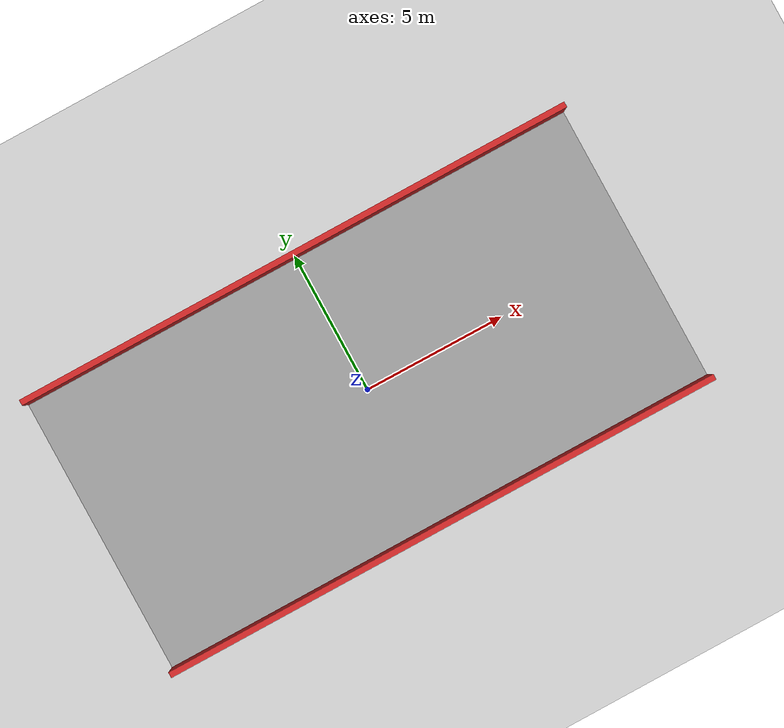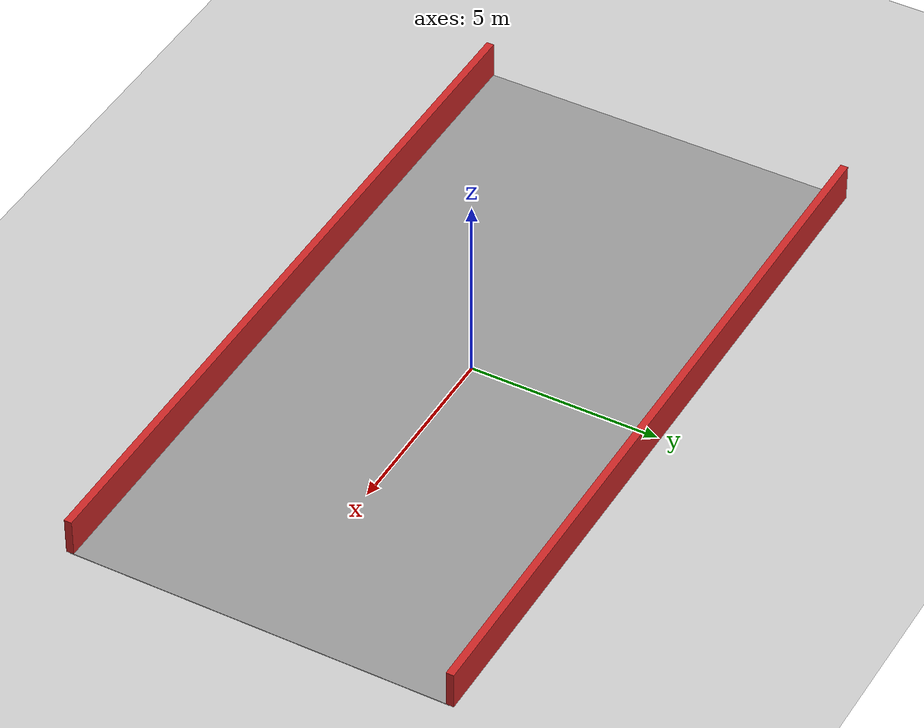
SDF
<?xml version="1.0" encoding="UTF-8"?>
<sdf version="1.4">
    <world name="simple_test">
        <scene>
            <shadows>1</shadows>
            <grid>1</grid>
            <origin_visual>1</origin_visual>
        </scene>

        <physics type="ode" default="true">
            <real_time_update_rate>1000</real_time_update_rate>
        </physics>

        <include>
            <uri>model://sun</uri>
        </include>

        <include>
            <uri>model://ground_plane</uri>
        </include>

        <!-- Simple racing track made with basic shapes -->
        <model name="simple_track">
            <pose>0 0 0.01 0 0 0</pose>
            <static>true</static>

            <!-- Track surface -->
            <link name="track_surface">
                <visual name="track_visual">
                    <geometry>
                        <box>
                            <size>20 10 0.02</size>
                        </box>
                    </geometry>
                    <material>
                        <script>
                            <name>Gazebo/Grey</name>
                        </script>
                    </material>
                </visual>
                <collision name="track_collision">
                    <geometry>
                        <box>
                            <size>20 10 0.02</size>
                        </box>
                    </geometry>
                    <surface>
                        <friction>
                            <ode>
                                <mu>1.0</mu>
                                <mu2>1.0</mu2>
                            </ode>
                        </friction>
                    </surface>
                </collision>
            </link>

            <!-- Left wall -->
            <link name="left_wall">
                <pose>0 5 0.5 0 0 0</pose>
                <visual name="left_wall_visual">
                    <geometry>
                        <box>
                            <size>20 0.2 1</size>
                        </box>
                    </geometry>
                    <material>
                        <script>
                            <name>Gazebo/Red</name>
                        </script>
                    </material>
                </visual>
                <collision name="left_wall_collision">
                    <geometry>
                        <box>
                            <size>20 0.2 1</size>
                        </box>
                    </geometry>
                </collision>
            </link>

            <!-- Right wall -->
            <link name="right_wall">
                <pose>0 -5 0.5 0 0 0</pose>
                <visual name="right_wall_visual">
                    <geometry>
                        <box>
                            <size>20 0.2 1</size>
                        </box>
                    </geometry>
                    <material>
                        <script>
                            <name>Gazebo/Red</name>
                        </script>
                    </material>
                </visual>
                <collision name="right_wall_collision">
                    <geometry>
                        <box>
                            <size>20 0.2 1</size>
                        </box>
                    </geometry>
                </collision>
            </link>
        </model>

        <gui>
            <camera name="user_camera">
                <pose>-10 0 15 0 0.7 0</pose>
            </camera>
        </gui>
    </world>
</sdf>
